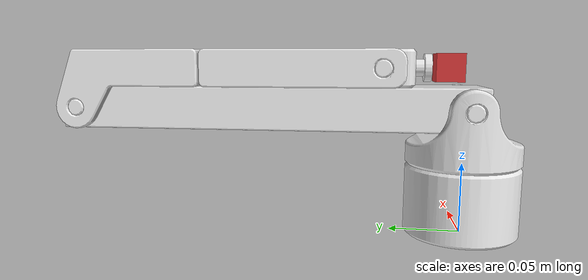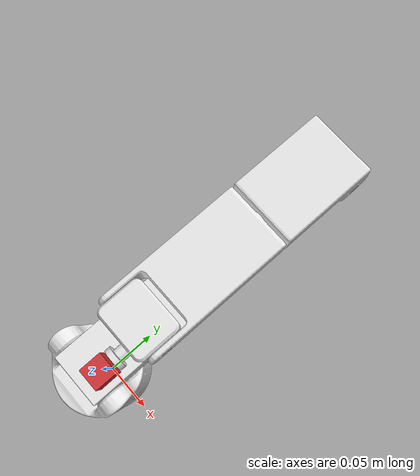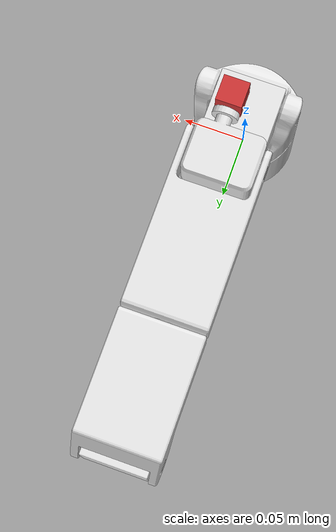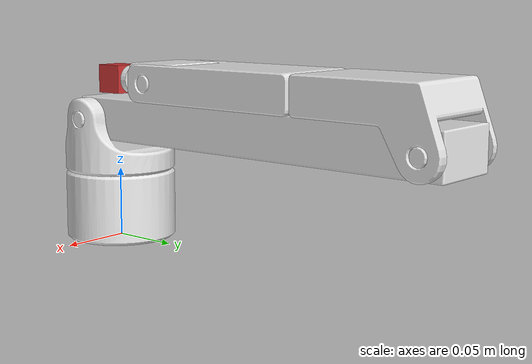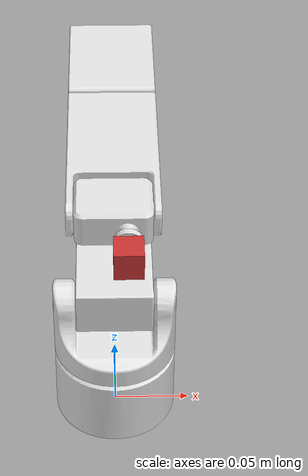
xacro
<?xml version="1.0"?>
<robot name="manipulator_full" xmlns:xacro="http://ros.org/wiki/xacro">

  <xacro:include filename="$(find manipulator_description)/urdf/robot_arm.urdf.xacro" />

  <!-- Anchor for isolated testing in GAZEBO -->
  <link name="world" />
  <joint name="world_to_arm_fixed" type="fixed">
    <parent link="world" />
    <child link="arm_base_link" />
    <origin xyz="0 0 0" rpy="0 0 0" />
  </joint>

    <!-- Плагин симуляции ТОЛЬКО для изолированной руки -->
    <gazebo>
        <plugin filename="gz_ros2_control-system" name="gz_ros2_control::GazeboSimROS2ControlPlugin">
            <parameters>$(find manipulator_moveit_config)/config/ros2_controllers.yaml</parameters>
        </plugin>
    </gazebo>

</robot>

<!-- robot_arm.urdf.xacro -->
<robot name="manipulator_full" xmlns:xacro="http://ros.org/wiki/xacro">

  <!-- Temporary anchor for isolated testing in GAZEBO -->
  <!-- When installing on tracked base, this block needs to be removed! -->

  <xacro:include filename="$(find manipulator_description)/urdf/manipulator.urdf.xacro" />

  <xacro:include filename="$(find manipulator_description)/urdf/gripper.urdf.xacro" />

  <joint name="arm_flange_to_gripper" type="fixed">
    <parent link="arm_tool0" />
    <child link="arm_gripper_base" />
    <origin xyz="0 0 0" rpy="0 0 0" />
  </joint>

</robot>

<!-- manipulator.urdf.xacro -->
<robot name="manipulator" xmlns:xacro="http://ros.org/wiki/xacro">
  <link
    name="arm_base_link">
    <inertial>
      <origin
        xyz="4.86504212565818E-50 2.63554913221343E-18 0.025"
        rpy="0 0 0" />
      <mass
        value="0.214602194166719" />
      <inertia
        ixx="0.000141907428768702"
        ixy="-1.7321625585832E-38"
        ixz="-4.99751814480714E-37"
        iyy="0.000141907428768702"
        iyz="3.98483338299657E-21"
        izz="0.000195458883624106" />
    </inertial>
    <visual>
      <origin
        xyz="0 0 0"
        rpy="0 0 0" />
      <geometry>
        <mesh
          filename="package://manipulator_description/meshes/visual/base_link.STL" />
      </geometry>
      <material
        name="">
        <color
          rgba="0.898039215686275 0.898039215686275 0.898039215686275 1" />
      </material>
    </visual>
  </link>
  <link
    name="arm_link_0">
    <inertial>
      <origin
        xyz="-2.42172055996385E-08 0.0479239768526514 1.20754652716066E-09"
        rpy="0 0 0" />
      <mass
        value="0.144960326981151" />
      <inertia
        ixx="8.74018632333427E-05"
        ixy="2.3713597938518E-10"
        ixz="1.70911331617853E-09"
        iyy="0.000105315197995598"
        iyz="-7.64759932786588E-11"
        izz="0.00011427634002569" />
    </inertial>
    <visual>
      <origin
        xyz="0 0 0"
        rpy="0 0 0" />
      <geometry>
        <mesh
          filename="package://manipulator_description/meshes/visual/link_0.STL" />
      </geometry>
      <material
        name="">
        <color
          rgba="0.898039215686275 0.898039215686275 0.898039215686275 1" />
      </material>
    </visual>
  </link>
  <joint
    name="arm_joint_0"
    type="revolute">
    <origin
      xyz="0 0 0.01"
      rpy="1.5708 0 -3.1416" />
    <parent
      link="arm_base_link" />
    <child
      link="arm_link_0" />
    <axis
      xyz="0 1 0" />
    <limit
      lower="-1.57"
      upper="1.57"
      effort="100"
      velocity="3.14" />
  </joint>
  <link
    name="arm_link_1">
    <inertial>
      <origin
        xyz="-2.06202605706356E-17 -1.38777878078145E-17 0.136454736581351"
        rpy="0 0 0" />
      <mass
        value="0.454659804786344" />
      <inertia
        ixx="0.00349875325133333"
        ixy="3.93072349676077E-21"
        ixz="4.87910489517752E-20"
        iyy="0.00356349253653011"
        iyz="4.3023228153909E-19"
        izz="0.000132195267254995" />
    </inertial>
    <visual>
      <origin
        xyz="0 0 0"
        rpy="0 0 0" />
      <geometry>
        <mesh
          filename="package://manipulator_description/meshes/visual/link_1.STL" />
      </geometry>
      <material
        name="">
        <color
          rgba="0.898039215686275 0.898039215686275 0.898039215686275 1" />
      </material>
    </visual>
    <collision>
      <origin xyz="0 0 0.123" rpy="0 0 0" />
      <geometry>
        <box size="0.042 0.026 0.25" />
      </geometry>
    </collision>
  </link>
  <joint
    name="arm_joint_1"
    type="revolute">
    <origin
      xyz="0 0.08 0"
      rpy="0 0 -3.1416" />
    <parent
      link="arm_link_0" />
    <child
      link="arm_link_1" />
    <axis
      xyz="1 0 0" />
    <limit
      lower="-0.05"
      upper="3.14"
      effort="100"
      velocity="3.14" />
  </joint>
  <link
    name="arm_link_2">
    <inertial>
      <origin
        xyz="1.3636789512938E-17 0.0274329923520601 0.0401215790802164"
        rpy="0 0 0" />
      <mass
        value="0.147589286297721" />
      <inertia
        ixx="0.000132107129077171"
        ixy="-1.91994445767256E-20"
        ixz="-3.33389455898258E-20"
        iyy="0.000176606852608867"
        iyz="-8.48960357408865E-06"
        izz="7.1292542897058E-05" />
    </inertial>
    <visual>
      <origin
        xyz="0 0 0"
        rpy="0 0 0" />
      <geometry>
        <mesh
          filename="package://manipulator_description/meshes/visual/link_2.STL" />
      </geometry>
      <material
        name="">
        <color
          rgba="0.898039215686275 0.898039215686275 0.898039215686275 1" />
      </material>
    </visual>
    <collision>
      <origin xyz="0 0.027 0.04" rpy="0 0 0" />
      <geometry>
        <box size="0.055 0.023 0.09" />
      </geometry>
    </collision>
  </link>
  <joint
    name="arm_joint_2"
    type="revolute">
    <origin
      xyz="0 0 0.274"
      rpy="-3.1416 0 0" />
    <parent
      link="arm_link_1" />
    <child
      link="arm_link_2" />
    <axis
      xyz="1 0 0" />
    <limit
      lower="-3.2"
      upper="0.05"
      effort="100"
      velocity="3.14" />
  </joint>
  <link
    name="arm_link_3">
    <inertial>
      <origin
        xyz="-1.23412761082935E-17 -1.38777878078145E-17 -0.0669348073058849"
        rpy="0 0 0" />
      <mass
        value="0.174425302814642" />
      <inertia
        ixx="0.000191036926190124"
        ixy="2.35191632323463E-21"
        ixz="8.78427263463147E-21"
        iyy="0.000244860074681847"
        iyz="1.24971002017316E-20"
        izz="7.31632344355312E-05" />
    </inertial>
    <visual>
      <origin
        xyz="0 0 0"
        rpy="0 0 0" />
      <geometry>
        <mesh
          filename="package://manipulator_description/meshes/visual/link_3.STL" />
      </geometry>
      <material
        name="">
        <color
          rgba="0.898039215686275 0.898039215686275 0.898039215686275 1" />
      </material>
    </visual>
    <collision>
      <origin xyz="0 -0.001 -0.066" rpy="0 0 0" />
      <geometry>
        <box size="0.055 0.023 0.09" />
      </geometry>
    </collision>

  </link>
  <joint
    name="arm_joint_3"
    type="revolute">
    <origin
      xyz="0 0.028 0.076"
      rpy="3.1416 0 3.1416" />
    <parent
      link="arm_link_2" />
    <child
      link="arm_link_3" />
    <axis
      xyz="0 0 1" />
    <limit
      lower="-1.57"
      upper="1.57"
      effort="100"
      velocity="3.14" />
  </joint>
  <link
    name="arm_link_4">
    <inertial>
      <origin
        xyz="-0.000179038895116557 -1.38777878078145E-17 -0.000496498074257876"
        rpy="0 0 0" />
      <mass
        value="0.060121816668628" />
      <inertia
        ixx="1.2590607608307E-05"
        ixy="-4.16962004037506E-22"
        ixz="-2.78234102287453E-07"
        iyy="2.36275190727776E-05"
        iyz="4.15068498831099E-22"
        izz="1.74495795511512E-05" />
    </inertial>
    <visual>
      <origin
        xyz="0 0 0"
        rpy="0 0 0" />
      <geometry>
        <mesh
          filename="package://manipulator_description/meshes/visual/link_4.STL" />
      </geometry>
      <material
        name="">
        <color
          rgba="0.898039215686275 0.898039215686275 0.898039215686275 1" />
      </material>
    </visual>
    <collision>
      <origin xyz="0 0 0" rpy="0 0 0" />
      <geometry>
        <box size="0.055 0.023 0.038" />
      </geometry>
    </collision>
  </link>
  <joint
    name="arm_joint_4"
    type="revolute">
    <origin
      xyz="0 0 -0.14"
      rpy="0 0 0" />
    <parent
      link="arm_link_3" />
    <child
      link="arm_link_4" />
    <axis
      xyz="1 0 0" />
    <limit
      lower="-1.57"
      upper="1.57"
      effort="100"
      velocity="3.14" />
  </joint>
  <link name="arm_link_5">
    <inertial>
      <origin xyz="0.0404945318045839 -0.000186099441790599 -0.00297364932795527" rpy="0 0 0" />
      <mass value="0.0715999953986554" />
      <inertia ixx="1.48418376361822E-05" ixy="-5.4905374492022E-06" ixz="-4.96484617743432E-07" iyy="6.52712843999073E-05" iyz="-3.20291385971273E-08" izz="5.71597778548071E-05" />
    </inertial>
    <visual>
      <origin xyz="0.01 0 0" rpy="0 1.5708 0" />
      <geometry>
        <cylinder radius="0.010" length="0.005" />
      </geometry>
      <material name="">
        <color rgba="0.898039215686275 0.898039215686275 0.898039215686275 1" /> </material>
    </visual>
    <collision>
      <origin xyz="0.01 0 0" rpy="0 1.5708 0" />
      <geometry>
        <cylinder radius="0.010" length="0.001" />
      </geometry>
    </collision>
  </link>
  <joint
    name="arm_joint_5"
    type="revolute">
    <origin
      xyz="-0.0095 0 -0.0225"
      rpy="3.1416 1.5708 0" />
    <parent
      link="arm_link_4" />
    <child
      link="arm_link_5" />
    <axis
      xyz="1 0 0" />
    <limit
      lower="-1.57"
      upper="1.57"
      effort="100"
      velocity="3.14" />
  </joint>
  <link name="arm_tool0" />
    <joint name="arm_flange_joint" type="fixed">
    <parent link="arm_link_5" />
    <child link="arm_tool0" />
    <origin xyz="0 0 0" rpy="0 0 0" />
  </joint>

  <!-- ВИРТУАЛЬНЫЕ МОТОРЫ ДЛЯ GAZEBO -->
  <ros2_control name="GazeboSimSystem" type="system">
    <hardware>
      <plugin>gz_ros2_control/GazeboSimSystem</plugin>
    </hardware>

    <!-- Описываем интерфейсы для всех 6 шарниров -->
    <joint name="arm_joint_0">
      <command_interface name="position"/>
      <state_interface name="position"/>
      <state_interface name="velocity"/>
    </joint>
    <joint name="arm_joint_1">
      <command_interface name="position"/>
      <state_interface name="position"/>
      <state_interface name="velocity"/>
    </joint>
    <joint name="arm_joint_2">
      <command_interface name="position"/>
      <state_interface name="position"/>
      <state_interface name="velocity"/>
    </joint>
    <joint name="arm_joint_3">
      <command_interface name="position"/>
      <state_interface name="position"/>
      <state_interface name="velocity"/>
    </joint>
    <joint name="arm_joint_4">
      <command_interface name="position"/>
      <state_interface name="position"/>
      <state_interface name="velocity"/>
    </joint>
    <joint name="arm_joint_5">
      <command_interface name="position"/>
      <state_interface name="position"/>
      <state_interface name="velocity"/>
    </joint>
  </ros2_control>

</robot>

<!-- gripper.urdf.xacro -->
<robot xmlns:xacro="http://ros.org/wiki/xacro">
  <link name="arm_gripper_base">
    <inertial>
      <mass value="0.1" />
      <inertia ixx="0.0001" ixy="0" ixz="0" iyy="0.0001" iyz="0" izz="0.0001" />
    </inertial>
    <visual>
      <origin xyz="0.025 0 0" rpy="0 0 0" />
      <geometry>
        <box size="0.02 0.02 0.02" />
      </geometry>
      <material name=""><color rgba="0.8 0.2 0.2 1" /></material> </visual>
  </link>
</robot>
